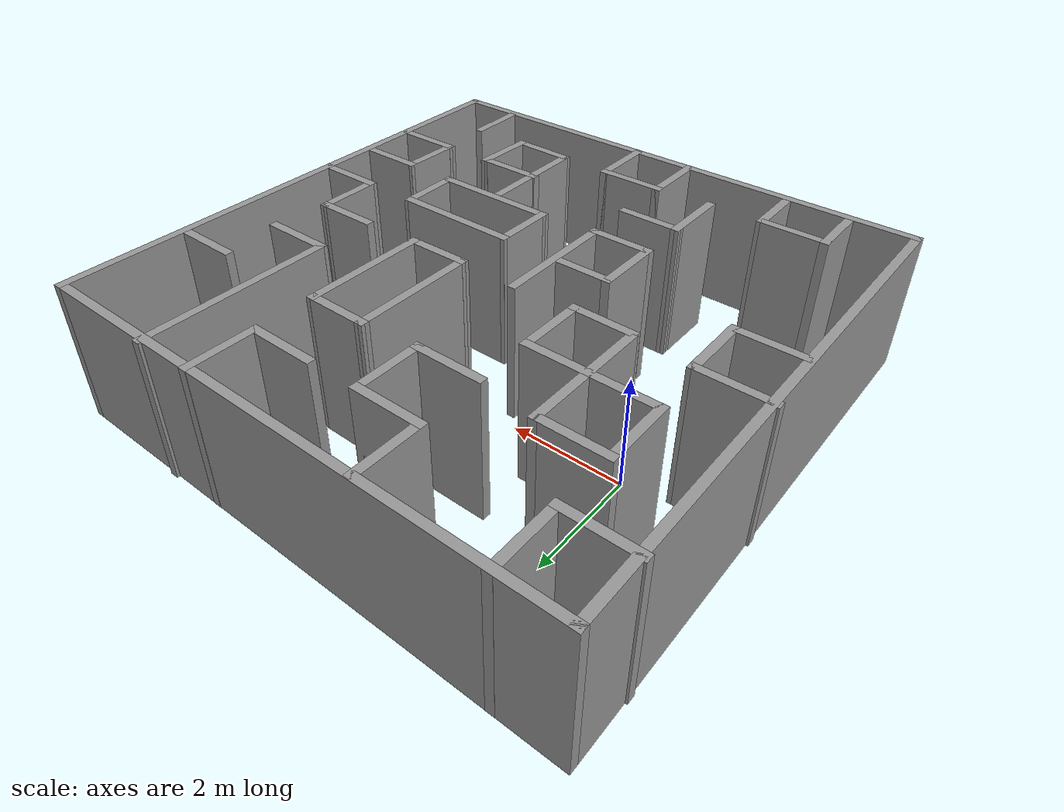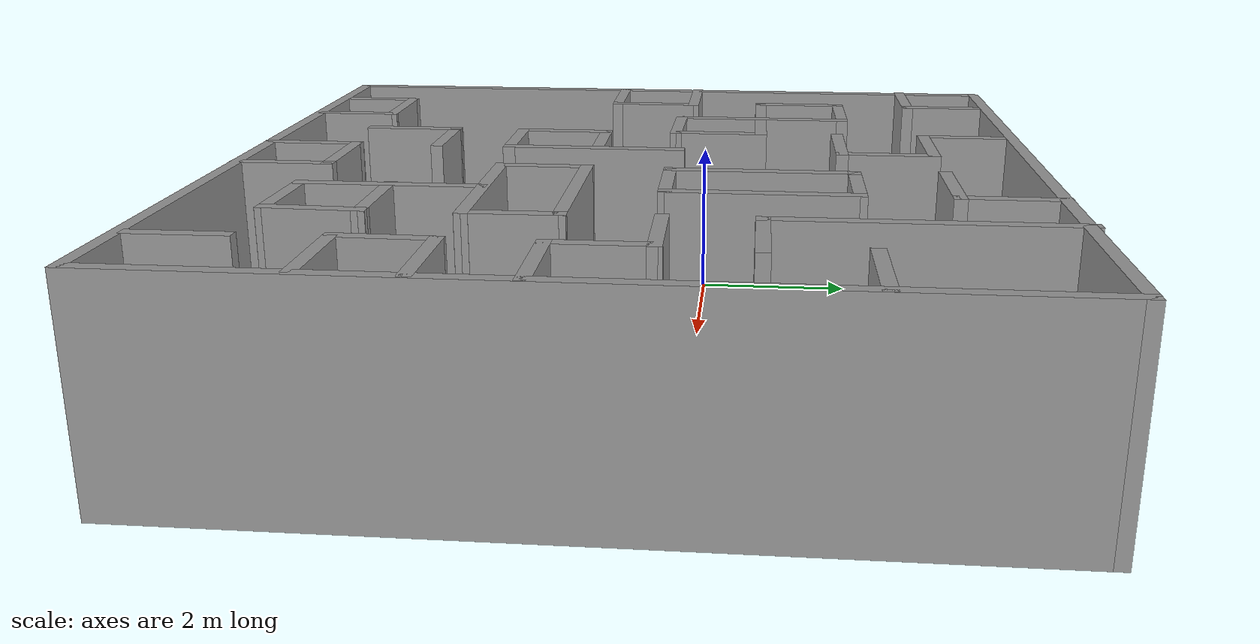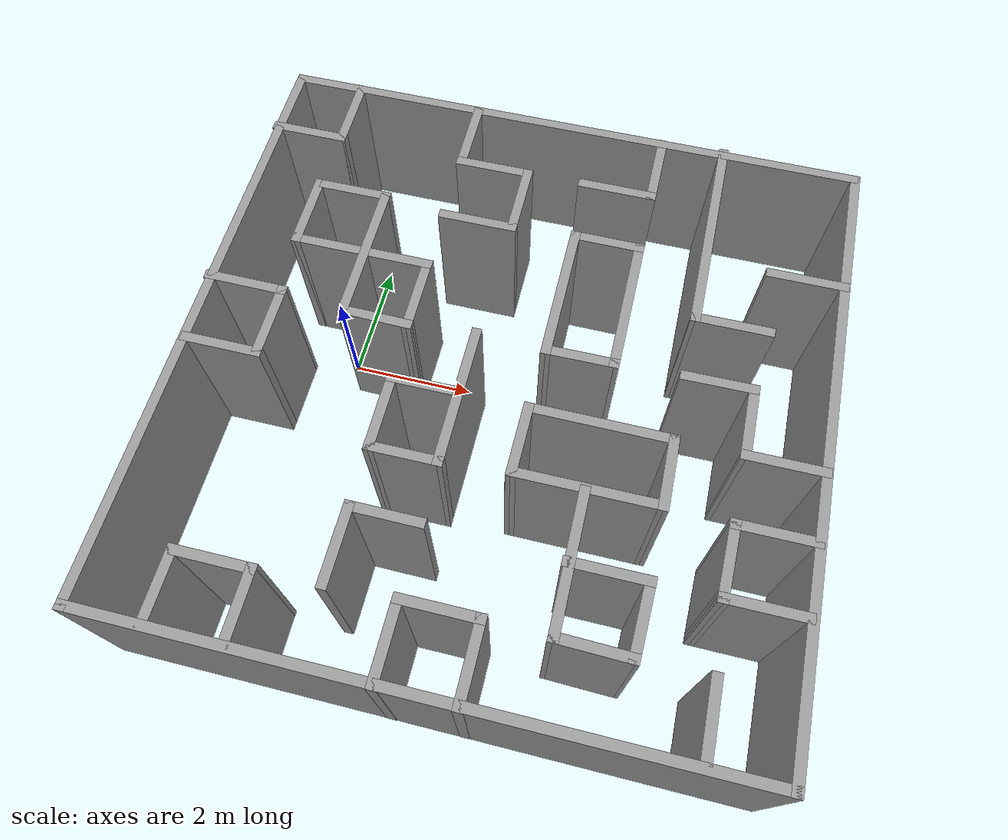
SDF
<?xml version='1.0'?>
<sdf version='1.7'>
  <model name='map9x9'>
    <pose>2.75593 -0.703796 0 0 -0 0</pose>
    <link name='Wall_100'>
      <collision name='Wall_100_Collision'>
        <geometry>
          <box>
            <size>1.25 0.15 2.5</size>
          </box>
        </geometry>
        <pose>0 0 1.25 0 -0 0</pose>
      </collision>
      <visual name='Wall_100_Visual'>
        <pose>0 0 1.25 0 -0 0</pose>
        <geometry>
          <box>
            <size>1.25 0.15 2.5</size>
          </box>
        </geometry>
        <material>
          <script>
            <uri>file://media/materials/scripts/gazebo.material</uri>
            <name>Gazebo/Grey</name>
          </script>
          <ambient>1 1 1 1</ambient>
        </material>
        <meta>
          <layer>0</layer>
        </meta>
      </visual>
      <pose>3.13423 1.48367 0 0 -0 0</pose>
    </link>
    <link name='Wall_102'>
      <collision name='Wall_102_Collision'>
        <geometry>
          <box>
            <size>1.25 0.15 2.5</size>
          </box>
        </geometry>
        <pose>0 0 1.25 0 -0 0</pose>
      </collision>
      <visual name='Wall_102_Visual'>
        <pose>0 0 1.25 0 -0 0</pose>
        <geometry>
          <box>
            <size>1.25 0.15 2.5</size>
          </box>
        </geometry>
        <material>
          <script>
            <uri>file://media/materials/scripts/gazebo.material</uri>
            <name>Gazebo/Grey</name>
          </script>
          <ambient>1 1 1 1</ambient>
        </material>
        <meta>
          <layer>0</layer>
        </meta>
      </visual>
      <pose>4.13423 2.53584 0 0 -0 0</pose>
    </link>
    <link name='Wall_15'>
      <collision name='Wall_15_Collision'>
        <geometry>
          <box>
            <size>1.25 0.15 2.5</size>
          </box>
        </geometry>
        <pose>0 0 1.25 0 -0 0</pose>
      </collision>
      <visual name='Wall_15_Visual'>
        <pose>0 0 1.25 0 -0 0</pose>
        <geometry>
          <box>
            <size>1.25 0.15 2.5</size>
          </box>
        </geometry>
        <material>
          <script>
            <uri>file://media/materials/scripts/gazebo.material</uri>
            <name>Gazebo/Grey</name>
          </script>
          <ambient>1 1 1 1</ambient>
        </material>
        <meta>
          <layer>0</layer>
        </meta>
      </visual>
      <pose>-1.54367 4.09149 0 0 -0 -1.5708</pose>
    </link>
    <link name='Wall_16'>
      <collision name='Wall_16_Collision'>
        <geometry>
          <box>
            <size>1.25 0.15 2.5</size>
          </box>
        </geometry>
        <pose>0 0 1.25 0 -0 0</pose>
      </collision>
      <visual name='Wall_16_Visual'>
        <pose>0 0 1.25 0 -0 0</pose>
        <geometry>
          <box>
            <size>1.25 0.15 2.5</size>
          </box>
        </geometry>
        <material>
          <script>
            <uri>file://media/materials/scripts/gazebo.material</uri>
            <name>Gazebo/Grey</name>
          </script>
          <ambient>1 1 1 1</ambient>
        </material>
        <meta>
          <layer>0</layer>
        </meta>
      </visual>
      <pose>-0.993669 3.54149 0 0 -0 0</pose>
    </link>
    <link name='Wall_17'>
      <collision name='Wall_17_Collision'>
        <geometry>
          <box>
            <size>1.25 0.15 2.5</size>
          </box>
        </geometry>
        <pose>0 0 1.25 0 -0 0</pose>
      </collision>
      <visual name='Wall_17_Visual'>
        <pose>0 0 1.25 0 -0 0</pose>
        <geometry>
          <box>
            <size>1.25 0.15 2.5</size>
          </box>
        </geometry>
        <material>
          <script>
            <uri>file://media/materials/scripts/gazebo.material</uri>
            <name>Gazebo/Grey</name>
          </script>
          <ambient>1 1 1 1</ambient>
        </material>
        <meta>
          <layer>0</layer>
        </meta>
      </visual>
      <pose>-0.443669 2.99149 0 0 -0 -1.5708</pose>
    </link>
    <link name='Wall_18'>
      <collision name='Wall_18_Collision'>
        <geometry>
          <box>
            <size>1.25 0.15 2.5</size>
          </box>
        </geometry>
        <pose>0 0 1.25 0 -0 0</pose>
      </collision>
      <visual name='Wall_18_Visual'>
        <pose>0 0 1.25 0 -0 0</pose>
        <geometry>
          <box>
            <size>1.25 0.15 2.5</size>
          </box>
        </geometry>
        <material>
          <script>
            <uri>file://media/materials/scripts/gazebo.material</uri>
            <name>Gazebo/Grey</name>
          </script>
          <ambient>1 1 1 1</ambient>
        </material>
        <meta>
          <layer>0</layer>
        </meta>
      </visual>
      <pose>-0.993669 2.44149 0 0 -0 3.14159</pose>
    </link>
    <link name='Wall_3'>
      <collision name='Wall_3_Collision'>
        <geometry>
          <box>
            <size>9.5 0.15 2.5</size>
          </box>
        </geometry>
        <pose>0 0 1.25 0 -0 0</pose>
      </collision>
      <visual name='Wall_3_Visual'>
        <pose>0 0 1.25 0 -0 0</pose>
        <geometry>
          <box>
            <size>9.5 0.15 2.5</size>
          </box>
        </geometry>
        <material>
          <script>
            <uri>file://media/materials/scripts/gazebo.material</uri>
            <name>Gazebo/Grey</name>
          </script>
          <ambient>1 1 1 1</ambient>
        </material>
        <meta>
          <layer>0</layer>
        </meta>
      </visual>
      <pose>-4.65701 -0.022117 0 0 -0 -1.5708</pose>
    </link>
    <link name='Wall_34'>
      <collision name='Wall_34_Collision'>
        <geometry>
          <box>
            <size>2.25 0.15 2.5</size>
          </box>
        </geometry>
        <pose>0 0 1.25 0 -0 0</pose>
      </collision>
      <visual name='Wall_34_Visual'>
        <pose>0 0 1.25 0 -0 0</pose>
        <geometry>
          <box>
            <size>2.25 0.15 2.5</size>
          </box>
        </geometry>
        <material>
          <script>
            <uri>file://media/materials/scripts/gazebo.material</uri>
            <name>Gazebo/Grey</name>
          </script>
          <ambient>1 1 1 1</ambient>
        </material>
        <meta>
          <layer>0</layer>
        </meta>
      </visual>
      <pose>-2.53749 1.513 0 0 -0 1.5708</pose>
    </link>
    <link name='Wall_35'>
      <collision name='Wall_35_Collision'>
        <geometry>
          <box>
            <size>1.25 0.15 2.5</size>
          </box>
        </geometry>
        <pose>0 0 1.25 0 -0 0</pose>
      </collision>
      <visual name='Wall_35_Visual'>
        <pose>0 0 1.25 0 -0 0</pose>
        <geometry>
          <box>
            <size>1.25 0.15 2.5</size>
          </box>
        </geometry>
        <material>
          <script>
            <uri>file://media/materials/scripts/gazebo.material</uri>
            <name>Gazebo/Grey</name>
          </script>
          <ambient>1 1 1 1</ambient>
        </material>
        <meta>
          <layer>0</layer>
        </meta>
      </visual>
      <pose>-3.08749 2.563 0 0 -0 3.14159</pose>
    </link>
    <link name='Wall_36'>
      <collision name='Wall_36_Collision'>
        <geometry>
          <box>
            <size>1.25 0.15 2.5</size>
          </box>
        </geometry>
        <pose>0 0 1.25 0 -0 0</pose>
      </collision>
      <visual name='Wall_36_Visual'>
        <pose>0 0 1.25 0 -0 0</pose>
        <geometry>
          <box>
            <size>1.25 0.15 2.5</size>
          </box>
        </geometry>
        <material>
          <script>
            <uri>file://media/materials/scripts/gazebo.material</uri>
            <name>Gazebo/Grey</name>
          </script>
          <ambient>1 1 1 1</ambient>
        </material>
        <meta>
          <layer>0</layer>
        </meta>
      </visual>
      <pose>-3.63749 2.013 0 0 -0 -1.5708</pose>
    </link>
    <link name='Wall_37'>
      <collision name='Wall_37_Collision'>
        <geometry>
          <box>
            <size>2.25 0.15 2.5</size>
          </box>
        </geometry>
        <pose>0 0 1.25 0 -0 0</pose>
      </collision>
      <visual name='Wall_37_Visual'>
        <pose>0 0 1.25 0 -0 0</pose>
        <geometry>
          <box>
            <size>2.25 0.15 2.5</size>
          </box>
        </geometry>
        <material>
          <script>
            <uri>file://media/materials/scripts/gazebo.material</uri>
            <name>Gazebo/Grey</name>
          </script>
          <ambient>1 1 1 1</ambient>
        </material>
        <meta>
          <layer>0</layer>
        </meta>
      </visual>
      <pose>-2.58749 1.463 0 0 -0 0</pose>
    </link>
    <link name='Wall_38'>
      <collision name='Wall_38_Collision'>
        <geometry>
          <box>
            <size>1.25 0.15 2.5</size>
          </box>
        </geometry>
        <pose>0 0 1.25 0 -0 0</pose>
      </collision>
      <visual name='Wall_38_Visual'>
        <pose>0 0 1.25 0 -0 0</pose>
        <geometry>
          <box>
            <size>1.25 0.15 2.5</size>
          </box>
        </geometry>
        <material>
          <script>
            <uri>file://media/materials/scripts/gazebo.material</uri>
            <name>Gazebo/Grey</name>
          </script>
          <ambient>1 1 1 1</ambient>
        </material>
        <meta>
          <layer>0</layer>
        </meta>
      </visual>
      <pose>-1.53749 0.912999 0 0 -0 -1.5708</pose>
    </link>
    <link name='Wall_39'>
      <collision name='Wall_39_Collision'>
        <geometry>
          <box>
            <size>1.13502 0.15 2.5</size>
          </box>
        </geometry>
        <pose>0 0 1.25 0 -0 0</pose>
      </collision>
      <visual name='Wall_39_Visual'>
        <pose>0 0 1.25 0 -0 0</pose>
        <geometry>
          <box>
            <size>1.13502 0.15 2.5</size>
          </box>
        </geometry>
        <material>
          <script>
            <uri>file://media/materials/scripts/gazebo.material</uri>
            <name>Gazebo/Grey</name>
          </script>
          <ambient>1 1 1 1</ambient>
        </material>
        <meta>
          <layer>0</layer>
        </meta>
      </visual>
      <pose>-2.02993 0.371411 0 0 -0 3.12451</pose>
    </link>
    <link name='Wall_4'>
      <collision name='Wall_4_Collision'>
        <geometry>
          <box>
            <size>9.5 0.15 2.5</size>
          </box>
        </geometry>
        <pose>0 0 1.25 0 -0 0</pose>
      </collision>
      <visual name='Wall_4_Visual'>
        <pose>0 0 1.25 0 -0 0</pose>
        <geometry>
          <box>
            <size>9.5 0.15 2.5</size>
          </box>
        </geometry>
        <material>
          <script>
            <uri>file://media/materials/scripts/gazebo.material</uri>
            <name>Gazebo/Grey</name>
          </script>
          <ambient>1 1 1 1</ambient>
        </material>
        <meta>
          <layer>0</layer>
        </meta>
      </visual>
      <pose>0.017991 -4.69712 0 0 -0 0</pose>
    </link>
    <link name='Wall_41'>
      <collision name='Wall_41_Collision'>
        <geometry>
          <box>
            <size>1.30692 0.15 2.5</size>
          </box>
        </geometry>
        <pose>0 0 1.25 0 -0 0</pose>
      </collision>
      <visual name='Wall_41_Visual'>
        <pose>0 0 1.25 0 -0 0</pose>
        <geometry>
          <box>
            <size>1.30692 0.15 2.5</size>
          </box>
        </geometry>
        <material>
          <script>
            <uri>file://media/materials/scripts/gazebo.material</uri>
            <name>Gazebo/Grey</name>
          </script>
          <ambient>1 1 1 1</ambient>
        </material>
        <meta>
          <layer>0</layer>
        </meta>
      </visual>
      <pose>-4.11405 0.497026 0 0 -0 -0.006536</pose>
    </link>
    <link name='Wall_42'>
      <collision name='Wall_42_Collision'>
        <geometry>
          <box>
            <size>1.25 0.15 2.5</size>
          </box>
        </geometry>
        <pose>0 0 1.25 0 -0 0</pose>
      </collision>
      <visual name='Wall_42_Visual'>
        <pose>0 0 1.25 0 -0 0</pose>
        <geometry>
          <box>
            <size>1.25 0.15 2.5</size>
          </box>
        </geometry>
        <material>
          <script>
            <uri>file://media/materials/scripts/gazebo.material</uri>
            <name>Gazebo/Grey</name>
          </script>
          <ambient>1 1 1 1</ambient>
        </material>
        <meta>
          <layer>0</layer>
        </meta>
      </visual>
      <pose>-3.5356 -0.056755 0 0 -0 -1.5708</pose>
    </link>
    <link name='Wall_43'>
      <collision name='Wall_43_Collision'>
        <geometry>
          <box>
            <size>1.25 0.15 2.5</size>
          </box>
        </geometry>
        <pose>0 0 1.25 0 -0 0</pose>
      </collision>
      <visual name='Wall_43_Visual'>
        <pose>0 0 1.25 0 -0 0</pose>
        <geometry>
          <box>
            <size>1.25 0.15 2.5</size>
          </box>
        </geometry>
        <material>
          <script>
            <uri>file://media/materials/scripts/gazebo.material</uri>
            <name>Gazebo/Grey</name>
          </script>
          <ambient>1 1 1 1</ambient>
        </material>
        <meta>
          <layer>0</layer>
        </meta>
      </visual>
      <pose>-4.0856 -0.606755 0 0 -0 3.14159</pose>
    </link>
    <link name='Wall_45'>
      <collision name='Wall_45_Collision'>
        <geometry>
          <box>
            <size>2.25 0.15 2.5</size>
          </box>
        </geometry>
        <pose>0 0 1.25 0 -0 0</pose>
      </collision>
      <visual name='Wall_45_Visual'>
        <pose>0 0 1.25 0 -0 0</pose>
        <geometry>
          <box>
            <size>2.25 0.15 2.5</size>
          </box>
        </geometry>
        <material>
          <script>
            <uri>file://media/materials/scripts/gazebo.material</uri>
            <name>Gazebo/Grey</name>
          </script>
          <ambient>1 1 1 1</ambient>
        </material>
        <meta>
          <layer>0</layer>
        </meta>
      </visual>
      <pose>-0.511029 -0.594562 0 0 -0 -1.5708</pose>
    </link>
    <link name='Wall_46'>
      <collision name='Wall_46_Collision'>
        <geometry>
          <box>
            <size>1.14119 0.15 2.5</size>
          </box>
        </geometry>
        <pose>0 0 1.25 0 -0 0</pose>
      </collision>
      <visual name='Wall_46_Visual'>
        <pose>0 0 1.25 0 -0 0</pose>
        <geometry>
          <box>
            <size>1.14119 0.15 2.5</size>
          </box>
        </geometry>
        <material>
          <script>
            <uri>file://media/materials/scripts/gazebo.material</uri>
            <name>Gazebo/Grey</name>
          </script>
          <ambient>1 1 1 1</ambient>
        </material>
        <meta>
          <layer>0</layer>
        </meta>
      </visual>
      <pose>-1.0063 -1.6456 0 0 -0 -3.13949</pose>
    </link>
    <link name='Wall_47'>
      <collision name='Wall_47_Collision'>
        <geometry>
          <box>
            <size>1.25 0.15 2.5</size>
          </box>
        </geometry>
        <pose>0 0 1.25 0 -0 0</pose>
      </collision>
      <visual name='Wall_47_Visual'>
        <pose>0 0 1.25 0 -0 0</pose>
        <geometry>
          <box>
            <size>1.25 0.15 2.5</size>
          </box>
        </geometry>
        <material>
          <script>
            <uri>file://media/materials/scripts/gazebo.material</uri>
            <name>Gazebo/Grey</name>
          </script>
          <ambient>1 1 1 1</ambient>
        </material>
        <meta>
          <layer>0</layer>
        </meta>
      </visual>
      <pose>-1.50158 -1.09664 0 0 -0 1.5708</pose>
    </link>
    <link name='Wall_48'>
      <collision name='Wall_48_Collision'>
        <geometry>
          <box>
            <size>1 0.15 2.5</size>
          </box>
        </geometry>
        <pose>0 0 1.25 0 -0 0</pose>
      </collision>
      <visual name='Wall_48_Visual'>
        <pose>0 0 1.25 0 -0 0</pose>
        <geometry>
          <box>
            <size>1 0.15 2.5</size>
          </box>
        </geometry>
        <material>
          <script>
            <uri>file://media/materials/scripts/gazebo.material</uri>
            <name>Gazebo/Grey</name>
          </script>
          <ambient>1 1 1 1</ambient>
        </material>
        <meta>
          <layer>0</layer>
        </meta>
      </visual>
      <pose>-1.07658 -0.546642 0 0 -0 0</pose>
    </link>
    <link name='Wall_5'>
      <collision name='Wall_5_Collision'>
        <geometry>
          <box>
            <size>9.5 0.15 2.5</size>
          </box>
        </geometry>
        <pose>0 0 1.25 0 -0 0</pose>
      </collision>
      <visual name='Wall_5_Visual'>
        <pose>0 0 1.25 0 -0 0</pose>
        <geometry>
          <box>
            <size>9.5 0.15 2.5</size>
          </box>
        </geometry>
        <material>
          <script>
            <uri>file://media/materials/scripts/gazebo.material</uri>
            <name>Gazebo/Grey</name>
          </script>
          <ambient>1 1 1 1</ambient>
        </material>
        <meta>
          <layer>0</layer>
        </meta>
      </visual>
      <pose>4.69299 -0.022117 0 0 -0 1.5708</pose>
    </link>
    <link name='Wall_50'>
      <collision name='Wall_50_Collision'>
        <geometry>
          <box>
            <size>1.14811 0.15 2.5</size>
          </box>
        </geometry>
        <pose>0 0 1.25 0 -0 0</pose>
      </collision>
      <visual name='Wall_50_Visual'>
        <pose>0 0 1.25 0 -0 0</pose>
        <geometry>
          <box>
            <size>1.14811 0.15 2.5</size>
          </box>
        </geometry>
        <material>
          <script>
            <uri>file://media/materials/scripts/gazebo.material</uri>
            <name>Gazebo/Grey</name>
          </script>
          <ambient>1 1 1 1</ambient>
        </material>
        <meta>
          <layer>0</layer>
        </meta>
      </visual>
      <pose>-3.56585 -4.17216 0 0 -0 1.5708</pose>
    </link>
    <link name='Wall_53'>
      <collision name='Wall_53_Collision'>
        <geometry>
          <box>
            <size>1.25 0.15 2.5</size>
          </box>
        </geometry>
        <pose>0 0 1.25 0 -0 0</pose>
      </collision>
      <visual name='Wall_53_Visual'>
        <pose>0 0 1.25 0 -0 0</pose>
        <geometry>
          <box>
            <size>1.25 0.15 2.5</size>
          </box>
        </geometry>
        <material>
          <script>
            <uri>file://media/materials/scripts/gazebo.material</uri>
            <name>Gazebo/Grey</name>
          </script>
          <ambient>1 1 1 1</ambient>
        </material>
        <meta>
          <layer>0</layer>
        </meta>
      </visual>
      <pose>-3.01585 -3.67311 0 0 -0 0</pose>
    </link>
    <link name='Wall_54'>
      <collision name='Wall_54_Collision'>
        <geometry>
          <box>
            <size>1.12543 0.15 2.5</size>
          </box>
        </geometry>
        <pose>0 0 1.25 0 -0 0</pose>
      </collision>
      <visual name='Wall_54_Visual'>
        <pose>0 0 1.25 0 -0 0</pose>
        <geometry>
          <box>
            <size>1.12543 0.15 2.5</size>
          </box>
        </geometry>
        <material>
          <script>
            <uri>file://media/materials/scripts/gazebo.material</uri>
            <name>Gazebo/Grey</name>
          </script>
          <ambient>1 1 1 1</ambient>
        </material>
        <meta>
          <layer>0</layer>
        </meta>
      </visual>
      <pose>-2.46386 -4.16082 0 0 -0 -1.56673</pose>
    </link>
    <link name='Wall_56'>
      <collision name='Wall_56_Collision'>
        <geometry>
          <box>
            <size>1.25 0.15 2.5</size>
          </box>
        </geometry>
        <pose>0 0 1.25 0 -0 0</pose>
      </collision>
      <visual name='Wall_56_Visual'>
        <pose>0 0 1.25 0 -0 0</pose>
        <geometry>
          <box>
            <size>1.25 0.15 2.5</size>
          </box>
        </geometry>
        <material>
          <script>
            <uri>file://media/materials/scripts/gazebo.material</uri>
            <name>Gazebo/Grey</name>
          </script>
          <ambient>1 1 1 1</ambient>
        </material>
        <meta>
          <layer>0</layer>
        </meta>
      </visual>
      <pose>-0.503467 -4.15146 0 0 -0 1.5708</pose>
    </link>
    <link name='Wall_59'>
      <collision name='Wall_59_Collision'>
        <geometry>
          <box>
            <size>1.25 0.15 2.5</size>
          </box>
        </geometry>
        <pose>0 0 1.25 0 -0 0</pose>
      </collision>
      <visual name='Wall_59_Visual'>
        <pose>0 0 1.25 0 -0 0</pose>
        <geometry>
          <box>
            <size>1.25 0.15 2.5</size>
          </box>
        </geometry>
        <material>
          <script>
            <uri>file://media/materials/scripts/gazebo.material</uri>
            <name>Gazebo/Grey</name>
          </script>
          <ambient>1 1 1 1</ambient>
        </material>
        <meta>
          <layer>0</layer>
        </meta>
      </visual>
      <pose>0.046533 -3.60146 0 0 -0 0</pose>
    </link>
    <link name='Wall_6'>
      <collision name='Wall_6_Collision'>
        <geometry>
          <box>
            <size>9.5 0.15 2.5</size>
          </box>
        </geometry>
        <pose>0 0 1.25 0 -0 0</pose>
      </collision>
      <visual name='Wall_6_Visual'>
        <pose>0 0 1.25 0 -0 0</pose>
        <geometry>
          <box>
            <size>9.5 0.15 2.5</size>
          </box>
        </geometry>
        <material>
          <script>
            <uri>file://media/materials/scripts/gazebo.material</uri>
            <name>Gazebo/Grey</name>
          </script>
          <ambient>1 1 1 1</ambient>
        </material>
        <meta>
          <layer>0</layer>
        </meta>
      </visual>
      <pose>0.017991 4.65288 0 0 -0 3.14159</pose>
    </link>
    <link name='Wall_60'>
      <collision name='Wall_60_Collision'>
        <geometry>
          <box>
            <size>1.25 0.15 2.5</size>
          </box>
        </geometry>
        <pose>0 0 1.25 0 -0 0</pose>
      </collision>
      <visual name='Wall_60_Visual'>
        <pose>0 0 1.25 0 -0 0</pose>
        <geometry>
          <box>
            <size>1.25 0.15 2.5</size>
          </box>
        </geometry>
        <material>
          <script>
            <uri>file://media/materials/scripts/gazebo.material</uri>
            <name>Gazebo/Grey</name>
          </script>
          <ambient>1 1 1 1</ambient>
        </material>
        <meta>
          <layer>0</layer>
        </meta>
      </visual>
      <pose>0.596533 -4.15146 0 0 -0 -1.5708</pose>
    </link>
    <link name='Wall_62'>
      <collision name='Wall_62_Collision'>
        <geometry>
          <box>
            <size>1.25 0.15 2.5</size>
          </box>
        </geometry>
        <pose>0 0 1.25 0 -0 0</pose>
      </collision>
      <visual name='Wall_62_Visual'>
        <pose>0 0 1.25 0 -0 0</pose>
        <geometry>
          <box>
            <size>1.25 0.15 2.5</size>
          </box>
        </geometry>
        <material>
          <script>
            <uri>file://media/materials/scripts/gazebo.material</uri>
            <name>Gazebo/Grey</name>
          </script>
          <ambient>1 1 1 1</ambient>
        </material>
        <meta>
          <layer>0</layer>
        </meta>
      </visual>
      <pose>-1.50158 -3.10042 0 0 -0 1.5708</pose>
    </link>
    <link name='Wall_63'>
      <collision name='Wall_63_Collision'>
        <geometry>
          <box>
            <size>1.14812 0.15 2.5</size>
          </box>
        </geometry>
        <pose>0 0 1.25 0 -0 0</pose>
      </collision>
      <visual name='Wall_63_Visual'>
        <pose>0 0 1.25 0 -0 0</pose>
        <geometry>
          <box>
            <size>1.14812 0.15 2.5</size>
          </box>
        </geometry>
        <material>
          <script>
            <uri>file://media/materials/scripts/gazebo.material</uri>
            <name>Gazebo/Grey</name>
          </script>
          <ambient>1 1 1 1</ambient>
        </material>
        <meta>
          <layer>0</layer>
        </meta>
      </visual>
      <pose>-1.00252 -2.55222 0 0 -0 -0.003598</pose>
    </link>
    <link name='Wall_65'>
      <collision name='Wall_65_Collision'>
        <geometry>
          <box>
            <size>1.15579 0.15 2.5</size>
          </box>
        </geometry>
        <pose>0 0 1.25 0 -0 0</pose>
      </collision>
      <visual name='Wall_65_Visual'>
        <pose>0 0 1.25 0 -0 0</pose>
        <geometry>
          <box>
            <size>1.15579 0.15 2.5</size>
          </box>
        </geometry>
        <material>
          <script>
            <uri>file://media/materials/scripts/gazebo.material</uri>
            <name>Gazebo/Grey</name>
          </script>
          <ambient>1 1 1 1</ambient>
        </material>
        <meta>
          <layer>0</layer>
        </meta>
      </visual>
      <pose>0.505985 -1.05307 0 0 -0 -1.57831</pose>
    </link>
    <link name='Wall_66'>
      <collision name='Wall_66_Collision'>
        <geometry>
          <box>
            <size>2.25 0.15 2.5</size>
          </box>
        </geometry>
        <pose>0 0 1.25 0 -0 0</pose>
      </collision>
      <visual name='Wall_66_Visual'>
        <pose>0 0 1.25 0 -0 0</pose>
        <geometry>
          <box>
            <size>2.25 0.15 2.5</size>
          </box>
        </geometry>
        <material>
          <script>
            <uri>file://media/materials/scripts/gazebo.material</uri>
            <name>Gazebo/Grey</name>
          </script>
          <ambient>1 1 1 1</ambient>
        </material>
        <meta>
          <layer>0</layer>
        </meta>
      </visual>
      <pose>1.5522 -1.5559 0 0 -0 0</pose>
    </link>
    <link name='Wall_67'>
      <collision name='Wall_67_Collision'>
        <geometry>
          <box>
            <size>1.1482 0.15 2.5</size>
          </box>
        </geometry>
        <pose>0 0 1.25 0 -0 0</pose>
      </collision>
      <visual name='Wall_67_Visual'>
        <pose>0 0 1.25 0 -0 0</pose>
        <geometry>
          <box>
            <size>1.1482 0.15 2.5</size>
          </box>
        </geometry>
        <material>
          <script>
            <uri>file://media/materials/scripts/gazebo.material</uri>
            <name>Gazebo/Grey</name>
          </script>
          <ambient>1 1 1 1</ambient>
        </material>
        <meta>
          <layer>0</layer>
        </meta>
      </visual>
      <pose>2.59568 -1.05685 0 0 -0 1.58386</pose>
    </link>
    <link name='Wall_68'>
      <collision name='Wall_68_Collision'>
        <geometry>
          <box>
            <size>2.22941 0.15 2.5</size>
          </box>
        </geometry>
        <pose>0 0 1.25 0 -0 0</pose>
      </collision>
      <visual name='Wall_68_Visual'>
        <pose>0 0 1.25 0 -0 0</pose>
        <geometry>
          <box>
            <size>2.22941 0.15 2.5</size>
          </box>
        </geometry>
        <material>
          <script>
            <uri>file://media/materials/scripts/gazebo.material</uri>
            <name>Gazebo/Grey</name>
          </script>
          <ambient>1 1 1 1</ambient>
        </material>
        <meta>
          <layer>0</layer>
        </meta>
      </visual>
      <pose>1.54946 -0.554014 0 0 -0 3.13796</pose>
    </link>
    <link name='Wall_70'>
      <collision name='Wall_70_Collision'>
        <geometry>
          <box>
            <size>2.16892 0.15 2.5</size>
          </box>
        </geometry>
        <pose>0 0 1.25 0 -0 0</pose>
      </collision>
      <visual name='Wall_70_Visual'>
        <pose>0 0 1.25 0 -0 0</pose>
        <geometry>
          <box>
            <size>2.16892 0.15 2.5</size>
          </box>
        </geometry>
        <material>
          <script>
            <uri>file://media/materials/scripts/gazebo.material</uri>
            <name>Gazebo/Grey</name>
          </script>
          <ambient>1 1 1 1</ambient>
        </material>
        <meta>
          <layer>0</layer>
        </meta>
      </visual>
      <pose>1.53434 -2.60316 0 0 -0 1.57454</pose>
    </link>
    <link name='Wall_75'>
      <collision name='Wall_75_Collision'>
        <geometry>
          <box>
            <size>1.25 0.15 2.5</size>
          </box>
        </geometry>
        <pose>0 0 1.25 0 -0 0</pose>
      </collision>
      <visual name='Wall_75_Visual'>
        <pose>0 0 1.25 0 -0 0</pose>
        <geometry>
          <box>
            <size>1.25 0.15 2.5</size>
          </box>
        </geometry>
        <material>
          <script>
            <uri>file://media/materials/scripts/gazebo.material</uri>
            <name>Gazebo/Grey</name>
          </script>
          <ambient>1 1 1 1</ambient>
        </material>
        <meta>
          <layer>0</layer>
        </meta>
      </visual>
      <pose>2.05788 -2.61451 0 0 -0 0</pose>
    </link>
    <link name='Wall_76'>
      <collision name='Wall_76_Collision'>
        <geometry>
          <box>
            <size>1.17097 0.15 2.5</size>
          </box>
        </geometry>
        <pose>0 0 1.25 0 -0 0</pose>
      </collision>
      <visual name='Wall_76_Visual'>
        <pose>0 0 1.25 0 -0 0</pose>
        <geometry>
          <box>
            <size>1.17097 0.15 2.5</size>
          </box>
        </geometry>
        <material>
          <script>
            <uri>file://media/materials/scripts/gazebo.material</uri>
            <name>Gazebo/Grey</name>
          </script>
          <ambient>1 1 1 1</ambient>
        </material>
        <meta>
          <layer>0</layer>
        </meta>
      </visual>
      <pose>2.59096 -3.1249 0 0 -0 -1.60393</pose>
    </link>
    <link name='Wall_77'>
      <collision name='Wall_77_Collision'>
        <geometry>
          <box>
            <size>1.18616 0.15 2.5</size>
          </box>
        </geometry>
        <pose>0 0 1.25 0 -0 0</pose>
      </collision>
      <visual name='Wall_77_Visual'>
        <pose>0 0 1.25 0 -0 0</pose>
        <geometry>
          <box>
            <size>1.18616 0.15 2.5</size>
          </box>
        </geometry>
        <material>
          <script>
            <uri>file://media/materials/scripts/gazebo.material</uri>
            <name>Gazebo/Grey</name>
          </script>
          <ambient>1 1 1 1</ambient>
        </material>
        <meta>
          <layer>0</layer>
        </meta>
      </visual>
      <pose>2.05608 -3.62396 0 0 -0 3.1197</pose>
    </link>
    <link name='Wall_79'>
      <collision name='Wall_79_Collision'>
        <geometry>
          <box>
            <size>1.11537 0.15 2.5</size>
          </box>
        </geometry>
        <pose>0 0 1.25 0 -0 0</pose>
      </collision>
      <visual name='Wall_79_Visual'>
        <pose>0 0 1.25 0 -0 0</pose>
        <geometry>
          <box>
            <size>1.11537 0.15 2.5</size>
          </box>
        </geometry>
        <material>
          <script>
            <uri>file://media/materials/scripts/gazebo.material</uri>
            <name>Gazebo/Grey</name>
          </script>
          <ambient>1 1 1 1</ambient>
        </material>
        <meta>
          <layer>0</layer>
        </meta>
      </visual>
      <pose>3.60597 -4.10329 0 0 -0 1.5798</pose>
    </link>
    <link name='Wall_8'>
      <collision name='Wall_8_Collision'>
        <geometry>
          <box>
            <size>1.25 0.15 2.5</size>
          </box>
        </geometry>
        <pose>0 0 1.25 0 -0 0</pose>
      </collision>
      <visual name='Wall_8_Visual'>
        <pose>0 0 1.25 0 -0 0</pose>
        <geometry>
          <box>
            <size>1.25 0.15 2.5</size>
          </box>
        </geometry>
        <material>
          <script>
            <uri>file://media/materials/scripts/gazebo.material</uri>
            <name>Gazebo/Grey</name>
          </script>
          <ambient>1 1 1 1</ambient>
        </material>
        <meta>
          <layer>0</layer>
        </meta>
      </visual>
      <pose>-4.14149 3.55453 0 0 -0 0</pose>
    </link>
    <link name='Wall_82'>
      <collision name='Wall_82_Collision'>
        <geometry>
          <box>
            <size>1.25 0.15 2.5</size>
          </box>
        </geometry>
        <pose>0 0 1.25 0 -0 0</pose>
      </collision>
      <visual name='Wall_82_Visual'>
        <pose>0 0 1.25 0 -0 0</pose>
        <geometry>
          <box>
            <size>1.25 0.15 2.5</size>
          </box>
        </geometry>
        <material>
          <script>
            <uri>file://media/materials/scripts/gazebo.material</uri>
            <name>Gazebo/Grey</name>
          </script>
          <ambient>1 1 1 1</ambient>
        </material>
        <meta>
          <layer>0</layer>
        </meta>
      </visual>
      <pose>4.0951 -2.61199 0 0 -0 3.14159</pose>
    </link>
    <link name='Wall_83'>
      <collision name='Wall_83_Collision'>
        <geometry>
          <box>
            <size>1.1761 0.15 2.5</size>
          </box>
        </geometry>
        <pose>0 0 1.25 0 -0 0</pose>
      </collision>
      <visual name='Wall_83_Visual'>
        <pose>0 0 1.25 0 -0 0</pose>
        <geometry>
          <box>
            <size>1.1761 0.15 2.5</size>
          </box>
        </geometry>
        <material>
          <script>
            <uri>file://media/materials/scripts/gazebo.material</uri>
            <name>Gazebo/Grey</name>
          </script>
          <ambient>1 1 1 1</ambient>
        </material>
        <meta>
          <layer>0</layer>
        </meta>
      </visual>
      <pose>3.55597 -2.09894 0 0 -0 1.54961</pose>
    </link>
    <link name='Wall_84'>
      <collision name='Wall_84_Collision'>
        <geometry>
          <box>
            <size>1.25 0.15 2.5</size>
          </box>
        </geometry>
        <pose>0 0 1.25 0 -0 0</pose>
      </collision>
      <visual name='Wall_84_Visual'>
        <pose>0 0 1.25 0 -0 0</pose>
        <geometry>
          <box>
            <size>1.25 0.15 2.5</size>
          </box>
        </geometry>
        <material>
          <script>
            <uri>file://media/materials/scripts/gazebo.material</uri>
            <name>Gazebo/Grey</name>
          </script>
          <ambient>1 1 1 1</ambient>
        </material>
        <meta>
          <layer>0</layer>
        </meta>
      </visual>
      <pose>4.11684 -1.5859 0 0 -0 0</pose>
    </link>
    <link name='Wall_87'>
      <collision name='Wall_87_Collision'>
        <geometry>
          <box>
            <size>1.25 0.15 2.5</size>
          </box>
        </geometry>
        <pose>0 0 1.25 0 -0 0</pose>
      </collision>
      <visual name='Wall_87_Visual'>
        <pose>0 0 1.25 0 -0 0</pose>
        <geometry>
          <box>
            <size>1.25 0.15 2.5</size>
          </box>
        </geometry>
        <material>
          <script>
            <uri>file://media/materials/scripts/gazebo.material</uri>
            <name>Gazebo/Grey</name>
          </script>
          <ambient>1 1 1 1</ambient>
        </material>
        <meta>
          <layer>0</layer>
        </meta>
      </visual>
      <pose>4.12988 -0.559812 0 0 -0 3.14159</pose>
    </link>
    <link name='Wall_88'>
      <collision name='Wall_88_Collision'>
        <geometry>
          <box>
            <size>1.19349 0.15 2.5</size>
          </box>
        </geometry>
        <pose>0 0 1.25 0 -0 0</pose>
      </collision>
      <visual name='Wall_88_Visual'>
        <pose>0 0 1.25 0 -0 0</pose>
        <geometry>
          <box>
            <size>1.19349 0.15 2.5</size>
          </box>
        </geometry>
        <material>
          <script>
            <uri>file://media/materials/scripts/gazebo.material</uri>
            <name>Gazebo/Grey</name>
          </script>
          <ambient>1 1 1 1</ambient>
        </material>
        <meta>
          <layer>0</layer>
        </meta>
      </visual>
      <pose>3.57771 -0.038073 0 0 -0 1.57496</pose>
    </link>
    <link name='Wall_89'>
      <collision name='Wall_89_Collision'>
        <geometry>
          <box>
            <size>1.14165 0.15 2.5</size>
          </box>
        </geometry>
        <pose>0 0 1.25 0 -0 0</pose>
      </collision>
      <visual name='Wall_89_Visual'>
        <pose>0 0 1.25 0 -0 0</pose>
        <geometry>
          <box>
            <size>1.14165 0.15 2.5</size>
          </box>
        </geometry>
        <material>
          <script>
            <uri>file://media/materials/scripts/gazebo.material</uri>
            <name>Gazebo/Grey</name>
          </script>
          <ambient>1 1 1 1</ambient>
        </material>
        <meta>
          <layer>0</layer>
        </meta>
      </visual>
      <pose>3.07988 0.479318 0 0 -0 -3.13282</pose>
    </link>
    <link name='Wall_9'>
      <collision name='Wall_9_Collision'>
        <geometry>
          <box>
            <size>1.25 0.15 2.5</size>
          </box>
        </geometry>
        <pose>0 0 1.25 0 -0 0</pose>
      </collision>
      <visual name='Wall_9_Visual'>
        <pose>0 0 1.25 0 -0 0</pose>
        <geometry>
          <box>
            <size>1.25 0.15 2.5</size>
          </box>
        </geometry>
        <material>
          <script>
            <uri>file://media/materials/scripts/gazebo.material</uri>
            <name>Gazebo/Grey</name>
          </script>
          <ambient>1 1 1 1</ambient>
        </material>
        <meta>
          <layer>0</layer>
        </meta>
      </visual>
      <pose>-3.5915 4.10453 0 0 -0 1.5708</pose>
    </link>
    <link name='Wall_91'>
      <collision name='Wall_91_Collision'>
        <geometry>
          <box>
            <size>2.25 0.15 2.5</size>
          </box>
        </geometry>
        <pose>0 0 1.25 0 -0 0</pose>
      </collision>
      <visual name='Wall_91_Visual'>
        <pose>0 0 1.25 0 -0 0</pose>
        <geometry>
          <box>
            <size>2.25 0.15 2.5</size>
          </box>
        </geometry>
        <material>
          <script>
            <uri>file://media/materials/scripts/gazebo.material</uri>
            <name>Gazebo/Grey</name>
          </script>
          <ambient>1 1 1 1</ambient>
        </material>
        <meta>
          <layer>0</layer>
        </meta>
      </visual>
      <pose>0.549446 1.4728 0 0 -0 1.5708</pose>
    </link>
    <link name='Wall_92'>
      <collision name='Wall_92_Collision'>
        <geometry>
          <box>
            <size>1.15878 0.15 2.5</size>
          </box>
        </geometry>
        <pose>0 0 1.25 0 -0 0</pose>
      </collision>
      <visual name='Wall_92_Visual'>
        <pose>0 0 1.25 0 -0 0</pose>
        <geometry>
          <box>
            <size>1.15878 0.15 2.5</size>
          </box>
        </geometry>
        <material>
          <script>
            <uri>file://media/materials/scripts/gazebo.material</uri>
            <name>Gazebo/Grey</name>
          </script>
          <ambient>1 1 1 1</ambient>
        </material>
        <meta>
          <layer>0</layer>
        </meta>
      </visual>
      <pose>1.05379 2.52062 0 0 -0 -0.00431</pose>
    </link>
    <link name='Wall_93'>
      <collision name='Wall_93_Collision'>
        <geometry>
          <box>
            <size>2.23696 0.15 2.5</size>
          </box>
        </geometry>
        <pose>0 0 1.25 0 -0 0</pose>
      </collision>
      <visual name='Wall_93_Visual'>
        <pose>0 0 1.25 0 -0 0</pose>
        <geometry>
          <box>
            <size>2.23696 0.15 2.5</size>
          </box>
        </geometry>
        <material>
          <script>
            <uri>file://media/materials/scripts/gazebo.material</uri>
            <name>Gazebo/Grey</name>
          </script>
          <ambient>1 1 1 1</ambient>
        </material>
        <meta>
          <layer>0</layer>
        </meta>
      </visual>
      <pose>1.55814 1.47497 0 0 -0 -1.5708</pose>
    </link>
    <link name='Wall_94'>
      <collision name='Wall_94_Collision'>
        <geometry>
          <box>
            <size>1.15873 0.15 2.5</size>
          </box>
        </geometry>
        <pose>0 0 1.25 0 -0 0</pose>
      </collision>
      <visual name='Wall_94_Visual'>
        <pose>0 0 1.25 0 -0 0</pose>
        <geometry>
          <box>
            <size>1.15873 0.15 2.5</size>
          </box>
        </geometry>
        <material>
          <script>
            <uri>file://media/materials/scripts/gazebo.material</uri>
            <name>Gazebo/Grey</name>
          </script>
          <ambient>1 1 1 1</ambient>
        </material>
        <meta>
          <layer>0</layer>
        </meta>
      </visual>
      <pose>1.05379 0.427144 0 0 -0 -3.13297</pose>
    </link>
    <link name='Wall_96'>
      <collision name='Wall_96_Collision'>
        <geometry>
          <box>
            <size>1.25 0.15 2.5</size>
          </box>
        </geometry>
        <pose>0 0 1.25 0 -0 0</pose>
      </collision>
      <visual name='Wall_96_Visual'>
        <pose>0 0 1.25 0 -0 0</pose>
        <geometry>
          <box>
            <size>1.25 0.15 2.5</size>
          </box>
        </geometry>
        <material>
          <script>
            <uri>file://media/materials/scripts/gazebo.material</uri>
            <name>Gazebo/Grey</name>
          </script>
          <ambient>1 1 1 1</ambient>
        </material>
        <meta>
          <layer>0</layer>
        </meta>
      </visual>
      <pose>1.56684 4.10758 0 0 -0 -1.5708</pose>
    </link>
    <link name='Wall_97'>
      <collision name='Wall_97_Collision'>
        <geometry>
          <box>
            <size>1.25 0.15 2.5</size>
          </box>
        </geometry>
        <pose>0 0 1.25 0 -0 0</pose>
      </collision>
      <visual name='Wall_97_Visual'>
        <pose>0 0 1.25 0 -0 0</pose>
        <geometry>
          <box>
            <size>1.25 0.15 2.5</size>
          </box>
        </geometry>
        <material>
          <script>
            <uri>file://media/materials/scripts/gazebo.material</uri>
            <name>Gazebo/Grey</name>
          </script>
          <ambient>1 1 1 1</ambient>
        </material>
        <meta>
          <layer>0</layer>
        </meta>
      </visual>
      <pose>1.01684 3.55758 0 0 -0 3.14159</pose>
    </link>
    <link name='Wall_99'>
      <collision name='Wall_99_Collision'>
        <geometry>
          <box>
            <size>3.36744 0.15 2.5</size>
          </box>
        </geometry>
        <pose>0 0 1.25 0 -0 0</pose>
      </collision>
      <visual name='Wall_99_Visual'>
        <pose>0 0 1.25 0 -0 0</pose>
        <geometry>
          <box>
            <size>3.36744 0.15 2.5</size>
          </box>
        </geometry>
        <material>
          <script>
            <uri>file://media/materials/scripts/gazebo.material</uri>
            <name>Gazebo/Grey</name>
          </script>
          <ambient>1 1 1 1</ambient>
        </material>
        <meta>
          <layer>0</layer>
        </meta>
      </visual>
      <pose>2.57553 3.09236 0 0 -0 -1.56539</pose>
    </link>
    <static>1</static>
  </model>
</sdf>
